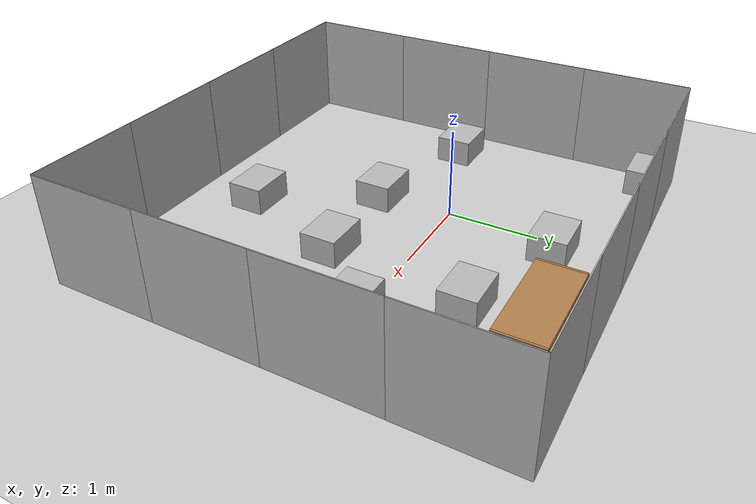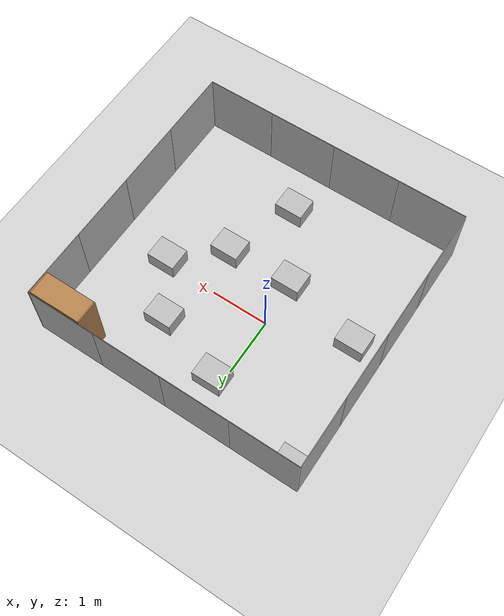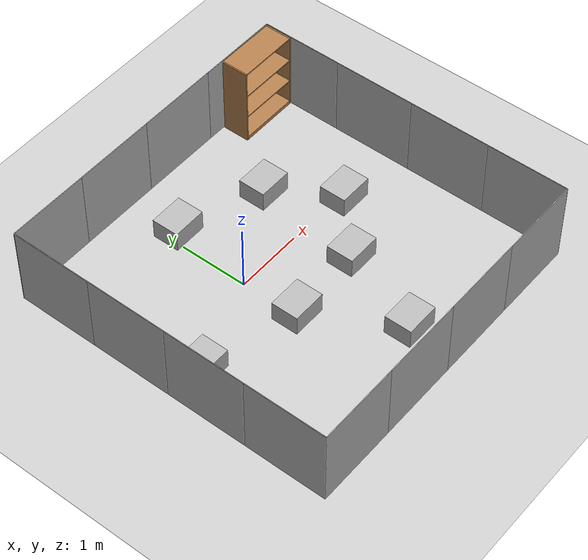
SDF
<sdf version="1.7">
 <world name="default">
  <light name="sun" type="directional">
   <pose>0 0 10 0 -0 0</pose>
   <diffuse>0.8 0.8 0.8 1</diffuse>
   <specular>0.2 0.2 0.2 1</specular>
   <attenuation>
    <range>1000</range>
    <constant>0.9</constant>
    <linear>0.01</linear>
    <quadratic>0.001</quadratic>
   </attenuation>
   <direction>-0.5 0.1 -0.9</direction>
   <spot><inner_angle>0</inner_angle><outer_angle>0</outer_angle><falloff>0</falloff></spot>
  </light>
  <model name="ground_plane">
   <static>1</static>
   <link name="link">
    <collision name="collision">
     <geometry><plane><normal>0 0 1</normal><size>100 100</size></plane></geometry>
     <surface>
      <contact><collide_bitmask>65535</collide_bitmask></contact>
      <friction><ode><mu>100</mu><mu2>50</mu2></ode></friction>
     </surface>
    </collision>
    <visual name="visual">
     <cast_shadows>0</cast_shadows>
     <geometry><plane><normal>0 0 1</normal><size>100 100</size></plane></geometry>
     <material>
      <script><uri>file://media/materials/scripts/gazebo.material</uri><name>Gazebo/Grey</name></script>
     </material>
    </visual>
   </link>
  </model>
  <gravity>0 0 -9.8</gravity>
  <magnetic_field>6e-06 2.3e-05 -4.2e-05</magnetic_field>
  <atmosphere type="adiabatic"/>
  <physics type="ode">
   <max_step_size>0.001</max_step_size>
   <real_time_factor>1</real_time_factor>
   <real_time_update_rate>1000</real_time_update_rate>
  </physics>
  <scene><ambient>0.4 0.4 0.4 1</ambient><background>0.7 0.7 0.7 1</background><shadows>1</shadows></scene>
  <spherical_coordinates>
   <surface_model>EARTH_WGS84</surface_model>
   <latitude_deg>0</latitude_deg>
   <longitude_deg>0</longitude_deg>
   <elevation>0</elevation>
   <heading_deg>0</heading_deg>
  </spherical_coordinates>
  <model name="nist_maze_wall_120_0">
   <static>1</static>
   <link name="nist_maze_wall_120_link">
    <collision name="collision">
     <geometry>
      <mesh><uri>model://nist_maze_wall_120/meshes/nist_maze_wall_120.dae</uri><scale>1 1 1</scale></mesh>
     </geometry>
    </collision>
    <visual name="visual">
     <geometry>
      <mesh><uri>model://nist_maze_wall_120/meshes/nist_maze_wall_120.dae</uri><scale>1 1 1</scale></mesh>
     </geometry>
    </visual>
   </link>
   <pose>-1.282103 1.403008 0 0 -0 0</pose>
  </model>
  <model name="nist_maze_wall_120_0_clone">
   <static>1</static>
   <link name="nist_maze_wall_120_link">
    <collision name="collision">
     <geometry>
      <mesh><uri>model://nist_maze_wall_120/meshes/nist_maze_wall_120.dae</uri><scale>1 1 1</scale></mesh>
     </geometry>
    </collision>
    <visual name="visual">
     <geometry>
      <mesh><uri>model://nist_maze_wall_120/meshes/nist_maze_wall_120.dae</uri><scale>1 1 1</scale></mesh>
     </geometry>
    </visual>
   </link>
   <pose>-0.082955 1.403653 0 0 -0 0</pose>
  </model>
  <model name="nist_maze_wall_120_0_clone_0">
   <static>1</static>
   <link name="nist_maze_wall_120_link">
    <collision name="collision">
     <geometry>
      <mesh><uri>model://nist_maze_wall_120/meshes/nist_maze_wall_120.dae</uri><scale>1 1 1</scale></mesh>
     </geometry>
    </collision>
    <visual name="visual">
     <geometry>
      <mesh><uri>model://nist_maze_wall_120/meshes/nist_maze_wall_120.dae</uri><scale>1 1 1</scale></mesh>
     </geometry>
    </visual>
   </link>
   <pose>1.115845 1.404006 0 0 -0 0</pose>
  </model>
  <model name="nist_maze_wall_120_0_clone_1">
   <static>1</static>
   <link name="nist_maze_wall_120_link">
    <collision name="collision">
     <geometry>
      <mesh><uri>model://nist_maze_wall_120/meshes/nist_maze_wall_120.dae</uri><scale>1 1 1</scale></mesh>
     </geometry>
    </collision>
    <visual name="visual">
     <geometry>
      <mesh><uri>model://nist_maze_wall_120/meshes/nist_maze_wall_120.dae</uri><scale>1 1 1</scale></mesh>
     </geometry>
    </visual>
   </link>
   <pose>2.313901 1.403306 0 0 -0 0</pose>
  </model>
  <model name="nist_maze_wall_120_0_clone_2">
   <static>1</static>
   <link name="nist_maze_wall_120_link">
    <collision name="collision">
     <geometry>
      <mesh><uri>model://nist_maze_wall_120/meshes/nist_maze_wall_120.dae</uri><scale>1 1 1</scale></mesh>
     </geometry>
    </collision>
    <visual name="visual">
     <geometry>
      <mesh><uri>model://nist_maze_wall_120/meshes/nist_maze_wall_120.dae</uri><scale>1 1 1</scale></mesh>
     </geometry>
    </visual>
   </link>
   <pose>-1.275342 1.402096 0 0 -0 1.569415</pose>
  </model>
  <model name="nist_maze_wall_120_0_clone_2_clone">
   <static>1</static>
   <link name="nist_maze_wall_120_link">
    <collision name="collision">
     <geometry>
      <mesh><uri>model://nist_maze_wall_120/meshes/nist_maze_wall_120.dae</uri><scale>1 1 1</scale></mesh>
     </geometry>
    </collision>
    <visual name="visual">
     <geometry>
      <mesh><uri>model://nist_maze_wall_120/meshes/nist_maze_wall_120.dae</uri><scale>1 1 1</scale></mesh>
     </geometry>
    </visual>
   </link>
   <pose>-2.47595 0.220081 0 0 0 -1.57269</pose>
  </model>
  <model name="nist_maze_wall_120_0_clone_2_clone_0">
   <static>1</static>
   <link name="nist_maze_wall_120_link">
    <collision name="collision">
     <geometry>
      <mesh><uri>model://nist_maze_wall_120/meshes/nist_maze_wall_120.dae</uri><scale>1 1 1</scale></mesh>
     </geometry>
    </collision>
    <visual name="visual">
     <geometry>
      <mesh><uri>model://nist_maze_wall_120/meshes/nist_maze_wall_120.dae</uri><scale>1 1 1</scale></mesh>
     </geometry>
    </visual>
   </link>
   <pose>-2.47775 -0.979218 0 0 0 -1.57269</pose>
  </model>
  <model name="nist_maze_wall_120_0_clone_2_clone_1">
   <static>1</static>
   <link name="nist_maze_wall_120_link">
    <collision name="collision">
     <geometry>
      <mesh><uri>model://nist_maze_wall_120/meshes/nist_maze_wall_120.dae</uri><scale>1 1 1</scale></mesh>
     </geometry>
    </collision>
    <visual name="visual">
     <geometry>
      <mesh><uri>model://nist_maze_wall_120/meshes/nist_maze_wall_120.dae</uri><scale>1 1 1</scale></mesh>
     </geometry>
    </visual>
   </link>
   <pose>-2.47937 -2.17642 0 0 0 -1.57269</pose>
  </model>
  <model name="nist_maze_wall_120_0_clone_3">
   <static>1</static>
   <link name="nist_maze_wall_120_link">
    <collision name="collision">
     <geometry>
      <mesh><uri>model://nist_maze_wall_120/meshes/nist_maze_wall_120.dae</uri><scale>1 1 1</scale></mesh>
     </geometry>
    </collision>
    <visual name="visual">
     <geometry>
      <mesh><uri>model://nist_maze_wall_120/meshes/nist_maze_wall_120.dae</uri><scale>1 1 1</scale></mesh>
     </geometry>
    </visual>
   </link>
   <pose>-1.28249 -3.3762 0 0 -0 0</pose>
  </model>
  <model name="nist_maze_wall_120_0_clone_4">
   <static>1</static>
   <link name="nist_maze_wall_120_link">
    <collision name="collision">
     <geometry>
      <mesh><uri>model://nist_maze_wall_120/meshes/nist_maze_wall_120.dae</uri><scale>1 1 1</scale></mesh>
     </geometry>
    </collision>
    <visual name="visual">
     <geometry>
      <mesh><uri>model://nist_maze_wall_120/meshes/nist_maze_wall_120.dae</uri><scale>1 1 1</scale></mesh>
     </geometry>
    </visual>
   </link>
   <pose>-0.085732 -3.37538 0 0 -0 0</pose>
  </model>
  <model name="nist_maze_wall_120_0_clone_5">
   <static>1</static>
   <link name="nist_maze_wall_120_link">
    <collision name="collision">
     <geometry>
      <mesh><uri>model://nist_maze_wall_120/meshes/nist_maze_wall_120.dae</uri><scale>1 1 1</scale></mesh>
     </geometry>
    </collision>
    <visual name="visual">
     <geometry>
      <mesh><uri>model://nist_maze_wall_120/meshes/nist_maze_wall_120.dae</uri><scale>1 1 1</scale></mesh>
     </geometry>
    </visual>
   </link>
   <pose>1.11257 -3.37559 0 0 -0 0</pose>
  </model>
  <model name="nist_maze_wall_120_0_clone_6">
   <static>1</static>
   <link name="nist_maze_wall_120_link">
    <collision name="collision">
     <geometry>
      <mesh><uri>model://nist_maze_wall_120/meshes/nist_maze_wall_120.dae</uri><scale>1 1 1</scale></mesh>
     </geometry>
    </collision>
    <visual name="visual">
     <geometry>
      <mesh><uri>model://nist_maze_wall_120/meshes/nist_maze_wall_120.dae</uri><scale>1 1 1</scale></mesh>
     </geometry>
    </visual>
   </link>
   <pose>2.31068 -3.37635 0 0 -0 0</pose>
  </model>
  <model name="nist_maze_wall_120_0_clone_2_clone_1_clone">
   <static>1</static>
   <link name="nist_maze_wall_120_link">
    <collision name="collision">
     <geometry>
      <mesh><uri>model://nist_maze_wall_120/meshes/nist_maze_wall_120.dae</uri><scale>1 1 1</scale></mesh>
     </geometry>
    </collision>
    <visual name="visual">
     <geometry>
      <mesh><uri>model://nist_maze_wall_120/meshes/nist_maze_wall_120.dae</uri><scale>1 1 1</scale></mesh>
     </geometry>
    </visual>
   </link>
   <pose>2.30885 -2.17953 0 0 0 -1.57269</pose>
  </model>
  <model name="nist_maze_wall_120_0_clone_2_clone_1_clone_0">
   <static>1</static>
   <link name="nist_maze_wall_120_link">
    <collision name="collision">
     <geometry>
      <mesh><uri>model://nist_maze_wall_120/meshes/nist_maze_wall_120.dae</uri><scale>1 1 1</scale></mesh>
     </geometry>
    </collision>
    <visual name="visual">
     <geometry>
      <mesh><uri>model://nist_maze_wall_120/meshes/nist_maze_wall_120.dae</uri><scale>1 1 1</scale></mesh>
     </geometry>
    </visual>
   </link>
   <pose>2.31072 -0.98366 0 0 0 -1.57269</pose>
  </model>
  <model name="nist_maze_wall_120_0_clone_2_clone_1_clone_1">
   <static>1</static>
   <link name="nist_maze_wall_120_link">
    <collision name="collision">
     <geometry>
      <mesh><uri>model://nist_maze_wall_120/meshes/nist_maze_wall_120.dae</uri><scale>1 1 1</scale></mesh>
     </geometry>
    </collision>
    <visual name="visual">
     <geometry>
      <mesh><uri>model://nist_maze_wall_120/meshes/nist_maze_wall_120.dae</uri><scale>1 1 1</scale></mesh>
     </geometry>
    </visual>
   </link>
   <pose>2.31315 0.211805 0 0 0 -1.57269</pose>
  </model>
  <model name="nist_maze_wall_120_0_clone_2_clone_1_clone_2">
   <static>1</static>
   <link name="nist_maze_wall_120_link">
    <collision name="collision">
     <geometry>
      <mesh><uri>model://nist_maze_wall_120/meshes/nist_maze_wall_120.dae</uri><scale>1 1 1</scale></mesh>
     </geometry>
    </collision>
    <visual name="visual">
     <geometry>
      <mesh><uri>model://nist_maze_wall_120/meshes/nist_maze_wall_120.dae</uri><scale>1 1 1</scale></mesh>
     </geometry>
    </visual>
   </link>
   <pose>2.31638 1.40969 0 0 0 -1.57269</pose>
  </model>
  <model name="bookshelf">
   <static>1</static>
   <link name="link">
    <inertial><mass>1</mass></inertial>
    <collision name="back">
     <pose>0 0.005 0.6 0 -0 0</pose>
     <geometry><box><size>0.9 0.01 1.2</size></box></geometry>
    </collision>
    <visual name="visual1">
     <pose>0 0.005 0.6 0 -0 0</pose>
     <geometry><box><size>0.9 0.01 1.2</size></box></geometry>
     <material>
      <script><uri>file://media/materials/scripts/gazebo.material</uri><name>Gazebo/Wood</name></script>
     </material>
    </visual>
    <collision name="left_side">
     <pose>0.45 -0.195 0.6 0 -0 0</pose>
     <geometry><box><size>0.02 0.4 1.2</size></box></geometry>
    </collision>
    <visual name="visual2">
     <pose>0.45 -0.195 0.6 0 -0 0</pose>
     <geometry><box><size>0.02 0.4 1.2</size></box></geometry>
     <material>
      <script><uri>file://media/materials/scripts/gazebo.material</uri><name>Gazebo/Wood</name></script>
     </material>
    </visual>
    <collision name="right_side">
     <pose>-0.45 -0.195 0.6 0 -0 0</pose>
     <geometry><box><size>0.02 0.4 1.2</size></box></geometry>
    </collision>
    <visual name="visual3">
     <pose>-0.45 -0.195 0.6 0 -0 0</pose>
     <geometry><box><size>0.02 0.4 1.2</size></box></geometry>
     <material>
      <script><uri>file://media/materials/scripts/gazebo.material</uri><name>Gazebo/Wood</name></script>
     </material>
    </visual>
    <collision name="bottom">
     <pose>0 -0.195 0.03 0 -0 0</pose>
     <geometry><box><size>0.88 0.4 0.06</size></box></geometry>
    </collision>
    <visual name="visual4">
     <pose>0 -0.195 0.03 0 -0 0</pose>
     <geometry><box><size>0.88 0.4 0.06</size></box></geometry>
     <material>
      <script><uri>file://media/materials/scripts/gazebo.material</uri><name>Gazebo/Wood</name></script>
     </material>
    </visual>
    <collision name="top">
     <pose>0 -0.195 1.19 0 -0 0</pose>
     <geometry><box><size>0.88 0.4 0.02</size></box></geometry>
    </collision>
    <visual name="visual5">
     <pose>0 -0.195 1.19 0 -0 0</pose>
     <geometry><box><size>0.88 0.4 0.02</size></box></geometry>
     <material>
      <script><uri>file://media/materials/scripts/gazebo.material</uri><name>Gazebo/Wood</name></script>
     </material>
    </visual>
    <collision name="low_shelf">
     <pose>0 -0.195 0.43 0 -0 0</pose>
     <geometry><box><size>0.88 0.4 0.02</size></box></geometry>
    </collision>
    <visual name="visual6">
     <pose>0 -0.195 0.43 0 -0 0</pose>
     <geometry><box><size>0.88 0.4 0.02</size></box></geometry>
     <material>
      <script><uri>file://media/materials/scripts/gazebo.material</uri><name>Gazebo/Wood</name></script>
     </material>
    </visual>
    <collision name="high_shelf">
     <pose>0 -0.195 0.8 0 -0 0</pose>
     <geometry><box><size>0.88 0.4 0.02</size></box></geometry>
    </collision>
    <visual name="visual7">
     <pose>0 -0.195 0.8 0 -0 0</pose>
     <geometry><box><size>0.88 0.4 0.02</size></box></geometry>
     <material>
      <script><uri>file://media/materials/scripts/gazebo.material</uri><name>Gazebo/Wood</name></script>
     </material>
    </visual>
   </link>
   <pose>2.44273 1.97962 0 0 -0 0</pose>
  </model>
  <model name="cardboard_box">
   <pose>1.38408 0.81282 0.149 0 0 -0.001278</pose>
   <link name="link">
    <inertial>
     <mass>2</mass>
     <inertia>
      <ixx>0.0416667</ixx>
      <ixy>0</ixy>
      <ixz>0</ixz>
      <iyy>0.0566667</iyy>
      <iyz>0</iyz>
      <izz>0.0683333</izz>
     </inertia>
    </inertial>
    <collision name="collision">
     <geometry><box><size>0.5 0.4 0.3</size></box></geometry>
     <surface>
      <friction><ode><mu>1</mu><mu2>1</mu2></ode></friction>
      <contact><ode><kp>1e+07</kp><kd>1</kd><min_depth>0.001</min_depth><max_vel>0.1</max_vel></ode></contact>
     </surface>
    </collision>
    <visual name="visual">
     <pose>0 0 -0.15 0 -0 0</pose>
     <geometry>
      <mesh><uri>model://cardboard_box/meshes/cardboard_box.dae</uri><scale>1.25932 1.00745 0.755591</scale></mesh>
     </geometry>
    </visual>
   </link>
  </model>
  <model name="cardboard_box_clone">
   <pose>1.95655 -0.065111 0.149 0 -0 0</pose>
   <link name="link">
    <inertial>
     <mass>2</mass>
     <inertia>
      <ixx>0.0416667</ixx>
      <ixy>0</ixy>
      <ixz>0</ixz>
      <iyy>0.0566667</iyy>
      <iyz>0</iyz>
      <izz>0.0683333</izz>
     </inertia>
    </inertial>
    <collision name="collision">
     <geometry><box><size>0.5 0.4 0.3</size></box></geometry>
     <surface>
      <friction><ode><mu>1</mu><mu2>1</mu2></ode></friction>
      <contact><ode><kp>1e+07</kp><kd>1</kd><min_depth>0.001</min_depth><max_vel>0.1</max_vel></ode></contact>
     </surface>
    </collision>
    <visual name="visual">
     <pose>0 0 -0.15 0 -0 0</pose>
     <geometry>
      <mesh><uri>model://cardboard_box/meshes/cardboard_box.dae</uri><scale>1.25932 1.00745 0.755591</scale></mesh>
     </geometry>
    </visual>
   </link>
  </model>
  <model name="cardboard_box_clone_0">
   <pose>0.750475 -2.01948 0.149 0 -0 0</pose>
   <link name="link">
    <inertial>
     <mass>2</mass>
     <inertia>
      <ixx>0.0416667</ixx>
      <ixy>0</ixy>
      <ixz>0</ixz>
      <iyy>0.0566667</iyy>
      <iyz>0</iyz>
      <izz>0.0683333</izz>
     </inertia>
    </inertial>
    <collision name="collision">
     <geometry><box><size>0.5 0.4 0.3</size></box></geometry>
     <surface>
      <friction><ode><mu>1</mu><mu2>1</mu2></ode></friction>
      <contact><ode><kp>1e+07</kp><kd>1</kd><min_depth>0.001</min_depth><max_vel>0.1</max_vel></ode></contact>
     </surface>
    </collision>
    <visual name="visual">
     <pose>0 0 -0.15 0 -0 0</pose>
     <geometry>
      <mesh><uri>model://cardboard_box/meshes/cardboard_box.dae</uri><scale>1.25932 1.00745 0.755591</scale></mesh>
     </geometry>
    </visual>
   </link>
  </model>
  <model name="cardboard_box_clone_1">
   <pose>0.049311 -0.814376 0.149 0 -0 0</pose>
   <link name="link">
    <inertial>
     <mass>2</mass>
     <inertia>
      <ixx>0.0416667</ixx>
      <ixy>0</ixy>
      <ixz>0</ixz>
      <iyy>0.0566667</iyy>
      <iyz>0</iyz>
      <izz>0.0683333</izz>
     </inertia>
    </inertial>
    <collision name="collision">
     <geometry><box><size>0.5 0.4 0.3</size></box></geometry>
     <surface>
      <friction><ode><mu>1</mu><mu2>1</mu2></ode></friction>
      <contact><ode><kp>1e+07</kp><kd>1</kd><min_depth>0.001</min_depth><max_vel>0.1</max_vel></ode></contact>
     </surface>
    </collision>
    <visual name="visual">
     <pose>0 0 -0.15 0 -0 0</pose>
     <geometry>
      <mesh><uri>model://cardboard_box/meshes/cardboard_box.dae</uri><scale>1.25932 1.00745 0.755591</scale></mesh>
     </geometry>
    </visual>
   </link>
  </model>
  <model name="cardboard_box_clone_2">
   <pose>-1.34869 -0.471456 0.149 0 -0 0</pose>
   <link name="link">
    <inertial>
     <mass>2</mass>
     <inertia>
      <ixx>0.0416667</ixx>
      <ixy>0</ixy>
      <ixz>0</ixz>
      <iyy>0.0566667</iyy>
      <iyz>0</iyz>
      <izz>0.0683333</izz>
     </inertia>
    </inertial>
    <collision name="collision">
     <geometry><box><size>0.5 0.4 0.3</size></box></geometry>
     <surface>
      <friction><ode><mu>1</mu><mu2>1</mu2></ode></friction>
      <contact><ode><kp>1e+07</kp><kd>1</kd><min_depth>0.001</min_depth><max_vel>0.1</max_vel></ode></contact>
     </surface>
    </collision>
    <visual name="visual">
     <pose>0 0 -0.15 0 -0 0</pose>
     <geometry>
      <mesh><uri>model://cardboard_box/meshes/cardboard_box.dae</uri><scale>1.25932 1.00745 0.755591</scale></mesh>
     </geometry>
    </visual>
   </link>
  </model>
  <model name="cardboard_box_clone_3">
   <pose>0.163807 1.22665 0.149 0 -0 0.007556</pose>
   <link name="link">
    <inertial>
     <mass>2</mass>
     <inertia>
      <ixx>0.0416667</ixx>
      <ixy>0</ixy>
      <ixz>0</ixz>
      <iyy>0.0566667</iyy>
      <iyz>0</iyz>
      <izz>0.0683333</izz>
     </inertia>
    </inertial>
    <collision name="collision">
     <geometry><box><size>0.5 0.4 0.3</size></box></geometry>
     <surface>
      <friction><ode><mu>1</mu><mu2>1</mu2></ode></friction>
      <contact><ode><kp>1e+07</kp><kd>1</kd><min_depth>0.001</min_depth><max_vel>0.1</max_vel></ode></contact>
     </surface>
    </collision>
    <visual name="visual">
     <pose>0 0 -0.15 0 -0 0</pose>
     <geometry>
      <mesh><uri>model://cardboard_box/meshes/cardboard_box.dae</uri><scale>1.25932 1.00745 0.755591</scale></mesh>
     </geometry>
    </visual>
   </link>
  </model>
  <model name="cardboard_box_clone_4">
   <pose>1.20343 -0.771319 0.149 0 -0 0</pose>
   <link name="link">
    <inertial>
     <mass>2</mass>
     <inertia>
      <ixx>0.0416667</ixx>
      <ixy>0</ixy>
      <ixz>0</ixz>
      <iyy>0.0566667</iyy>
      <iyz>0</iyz>
      <izz>0.0683333</izz>
     </inertia>
    </inertial>
    <collision name="collision">
     <geometry><box><size>0.5 0.4 0.3</size></box></geometry>
     <surface>
      <friction><ode><mu>1</mu><mu2>1</mu2></ode></friction>
      <contact><ode><kp>1e+07</kp><kd>1</kd><min_depth>0.001</min_depth><max_vel>0.1</max_vel></ode></contact>
     </surface>
    </collision>
    <visual name="visual">
     <pose>0 0 -0.15 0 -0 0</pose>
     <geometry>
      <mesh><uri>model://cardboard_box/meshes/cardboard_box.dae</uri><scale>1.25932 1.00745 0.755591</scale></mesh>
     </geometry>
    </visual>
   </link>
  </model>
  <model name="cardboard_box_clone_5">
   <pose>-1.61242 1.75558 0.149 0 -0 0.001134</pose>
   <link name="link">
    <inertial>
     <mass>2</mass>
     <inertia>
      <ixx>0.0416667</ixx>
      <ixy>0</ixy>
      <ixz>0</ixz>
      <iyy>0.0566667</iyy>
      <iyz>0</iyz>
      <izz>0.0683333</izz>
     </inertia>
    </inertial>
    <collision name="collision">
     <geometry><box><size>0.5 0.4 0.3</size></box></geometry>
     <surface>
      <friction><ode><mu>1</mu><mu2>1</mu2></ode></friction>
      <contact><ode><kp>1e+07</kp><kd>1</kd><min_depth>0.001</min_depth><max_vel>0.1</max_vel></ode></contact>
     </surface>
    </collision>
    <visual name="visual">
     <pose>0 0 -0.15 0 -0 0</pose>
     <geometry>
      <mesh><uri>model://cardboard_box/meshes/cardboard_box.dae</uri><scale>1.25932 1.00745 0.755591</scale></mesh>
     </geometry>
    </visual>
   </link>
  </model>
 </world>
</sdf>
